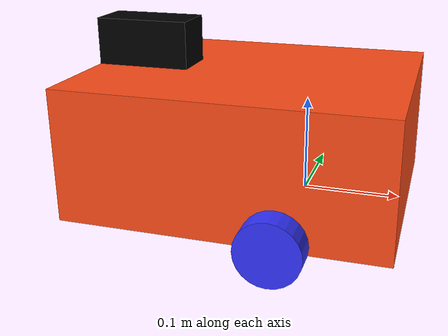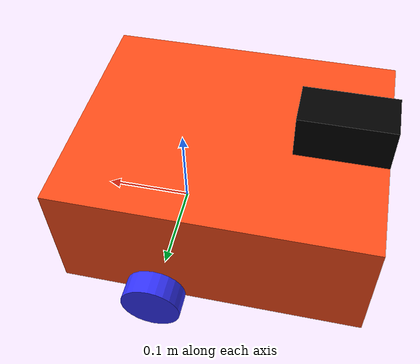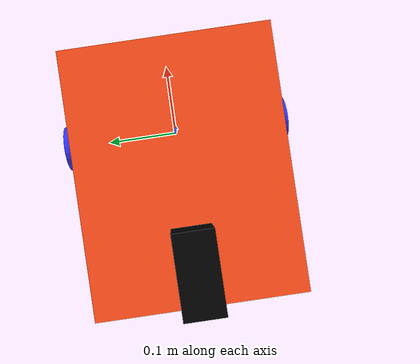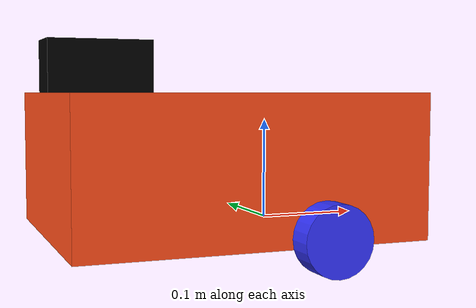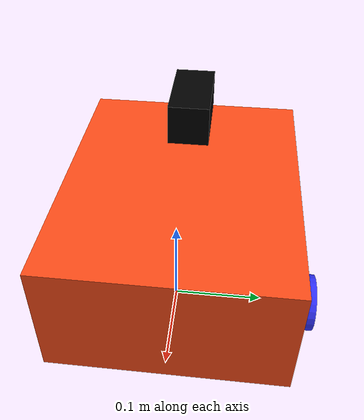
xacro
<?xml version="1.0" ?>
<robot name='robot' xmlns:xacro="http://ros.org/wiki/xacro">

    <xacro:include filename="$(find robot_description)/urdf/gazebo.urdf.xacro" />
    <!--xacro:include filename="$(find robot_description)/urdf/lidar.urdf.xacro" /-->
    <!--xacro:include filename="$(find robot_description)/urdf/depth.urdf.xacro" /-->

    <xacro:property name="chassis_length" value="0.335"/>
    <xacro:property name="chassis_width" value="0.265"/>
    <xacro:property name="chassis_height" value="0.138"/>
    <xacro:property name="wheel_radius" value="0.033"/>
    <xacro:property name="wheel_thickness" value="0.026"/>
    <xacro:property name="wheel_mass" value="0.05"/>
    <xacro:property name="wheel_offset_x" value="0.226"/>
    <xacro:property name="wheel_offset_y" value="0.1485"/>
    <xacro:property name="wheel_offset_z" value="0.01"/>
    <xacro:property name="caster_wheel_radius" value="0.01"/>
    <xacro:property name="caster_wheel_mass" value="0.01"/>
    <xacro:property name="caster_wheel_offset_x" value="0.075"/>
    <xacro:property name="caster_wheel_offset_z" value="${wheel_offset_z - wheel_radius + caster_wheel_radius}"/>
    <xacro:property name="mass" value="1.0"/>

    <!-- Добавляем свойства для лидара -->
    <xacro:property name="lidar_length" value="0.1"/>
    <xacro:property name="lidar_width" value="0.05"/>
    <xacro:property name="lidar_height" value="0.05"/>
    <xacro:property name="lidar_mass" value="0.1"/>
    <xacro:property name="lidar_offset_z" value="${chassis_height}"/>

    <material name="white">
        <color rgba="1 1 1 1" />
    </material>

    <material name="orange">
        <color rgba="1 0.3 0.1 1"/>
    </material>

    <material name="blue">
        <color rgba="0.2 0.2 1 1"/>
    </material>

    <material name="black">
        <color rgba="0 0 0 1"/>
    </material>

    <material name="red">
        <color rgba="1 0 0 1"/>
    </material>

    <link name="base_link">
    </link>

    <link name="base_footprint">
    </link>

    <joint name="base_footprint_joint" type="fixed">
        <parent link="base_link"/>
        <child link="base_footprint"/>
        <origin xyz="0 0 -0.138" rpy="0 0 0"/>
    </joint>

    <joint name="chassis_joint" type="fixed">
        <parent link="base_link"/>
        <child link="chassis"/>
        <origin xyz="${-wheel_offset_x} 0 ${-wheel_offset_z}"/>
    </joint>

    <link name='chassis'>

    <inertial>
        <origin xyz="${chassis_length/2} 0 ${chassis_height/2}" rpy="0 0 0"/>
        <mass value="${mass}" />
        <inertia ixx="${(1/12) * mass * (chassis_width*chassis_width+chassis_height*chassis_height)}" ixy="0.0" ixz="0.0"
                 iyy="${(1/12) * mass * (chassis_length*chassis_length+chassis_height*chassis_height)}" iyz="0.0"
                 izz="${(1/12) * mass * (chassis_length*chassis_length+chassis_width*chassis_width)}" />
    </inertial>
    <visual>
        <origin xyz="${chassis_length/2} 0 ${chassis_height/2}"/>
        <geometry>
            <box size="${chassis_length} ${chassis_width} ${chassis_height}"/>
        </geometry>
        <material name="orange"/>
    </visual>
    <collision>
        <origin xyz="${chassis_length/2} 0 ${chassis_height/2}"/>
        <geometry>
            <box size="${chassis_length} ${chassis_width} ${chassis_height}"/>
        </geometry>
    </collision>
    </link>

    <gazebo reference="chassis">
        <material>Gazebo/Orange</material>
    </gazebo>

    <joint name="left_wheel_joint" type="continuous">
        <parent link="base_link"/>
        <child link="left_wheel"/>
        <origin xyz="0 ${wheel_offset_y} 0" rpy="-${pi/2} 0 0" />
        <axis xyz="0 0 1"/>
    </joint>

    <link name="left_wheel">
        <visual>
            <geometry>
                <cylinder radius="${wheel_radius}" length="${wheel_thickness}"/>
            </geometry>
            <material name="blue"/>
        </visual>
        <collision>
            <geometry>
                <sphere radius="${wheel_radius}"/>
            </geometry>
        </collision>
        <inertial>
            <origin xyz="0 0 0" rpy="0 0 0"/>
            <mass value="${wheel_mass}" />
            <inertia ixx="${(1/12) * wheel_mass * (3*wheel_radius*wheel_radius + wheel_thickness*wheel_thickness)}" ixy="0.0" ixz="0.0"
                     iyy="${(1/12) * wheel_mass * (3*wheel_radius*wheel_radius + wheel_thickness*wheel_thickness)}" iyz="0.0"
                     izz="${(1/2) * wheel_mass * (wheel_radius*wheel_radius)}" />
        </inertial>
    </link>

    <gazebo reference="left_wheel">
        <material>Gazebo/Blue</material>
    </gazebo>

    <joint name="right_wheel_joint" type="continuous">
        <parent link="base_link"/>
        <child link="right_wheel"/>
        <origin xyz="0 ${-wheel_offset_y} 0" rpy="${pi/2} 0 0" />
        <axis xyz="0 0 -1"/>
    </joint>

    <link name="right_wheel">
        <visual>
            <geometry>
                <cylinder radius="${wheel_radius}" length="${wheel_thickness}"/>
            </geometry>
            <material name="blue"/>
        </visual>
        <collision>
            <geometry>
                <sphere radius="${wheel_radius}"/>
            </geometry>
        </collision>
        <inertial>
            <origin xyz="0 0 0" rpy="0 0 0"/>
            <mass value="${wheel_mass}" />
            <inertia ixx="${(1/12) * wheel_mass * (3*wheel_radius*wheel_radius + wheel_thickness*wheel_thickness)}" ixy="0.0" ixz="0.0"
                     iyy="${(1/12) * wheel_mass * (3*wheel_radius*wheel_radius + wheel_thickness*wheel_thickness)}" iyz="0.0"
                     izz="${(1/2) * wheel_mass * (wheel_radius*wheel_radius)}" />
        </inertial>
    </link>

    <gazebo reference="right_wheel">
        <material>Gazebo/Blue</material>
    </gazebo>

    <joint name="caster_wheel_joint" type="fixed">
        <parent link="chassis"/>
        <child link="caster_wheel"/>
        <origin xyz="${caster_wheel_offset_x} 0 ${caster_wheel_offset_z}"/>
    </joint>

    <link name="caster_wheel">
        <visual>
            <geometry>
                <sphere radius="${caster_wheel_radius}"/>
            </geometry>
            <material name="white"/>
        </visual>
        <collision>
            <geometry>
                <sphere radius="${caster_wheel_radius}"/>
            </geometry>
        </collision>
        <inertial>
            <origin xyz="0 0 0" rpy="0 0 0"/>
            <mass value="${caster_wheel_mass}" />
            <inertia ixx="${(2/5) * caster_wheel_mass * (caster_wheel_radius*caster_wheel_radius)}" ixy="0.0" ixz="0.0"
                     iyy="${(2/5) * caster_wheel_mass * (caster_wheel_radius*caster_wheel_radius)}" iyz="0.0"
                     izz="${(2/5) * caster_wheel_mass * (caster_wheel_radius*caster_wheel_radius)}" />
        </inertial>
    </link>

    <gazebo reference="caster_wheel">
        <material>Gazebo/White</material>
        <mu1 value="0.001"/>
        <mu2 value="0.001"/>
    </gazebo>

    <!-- Добавляем лидар -->
    <joint name="lidar_joint" type="fixed">
        <parent link="chassis"/>
        <child link="lidar"/>
        <origin xyz="0 0 ${lidar_offset_z}" rpy="0 0 0"/>
    </joint>

    <link name="lidar">
        <inertial>
            <origin xyz="${lidar_length/2} 0 ${lidar_height/2}" rpy="0 0 0"/>
            <mass value="${lidar_mass}" />
            <inertia ixx="${(1/12) * lidar_mass * (lidar_width*lidar_width+lidar_height*lidar_height)}" ixy="0.0" ixz="0.0"
                     iyy="${(1/12) * lidar_mass * (lidar_length*lidar_length+lidar_height*lidar_height)}" iyz="0.0"
                     izz="${(1/12) * lidar_mass * (lidar_length*lidar_length+lidar_width*lidar_width)}" />
        </inertial>
        <visual>
            <origin xyz="${lidar_length/2} 0 ${lidar_height/2}"/>
            <geometry>
                <box size="${lidar_length} ${lidar_width} ${lidar_height}"/>
            </geometry>
            <material name="black"/>
        </visual>
        <collision>
            <origin xyz="${lidar_length/2} 0 ${lidar_height/2}"/>
            <geometry>
                <box size="${lidar_length} ${lidar_width} ${lidar_height}"/>
            </geometry>
        </collision>
    </link>

    <gazebo reference="lidar">
        <material>Gazebo/Black</material>
    </gazebo>

</robot>
